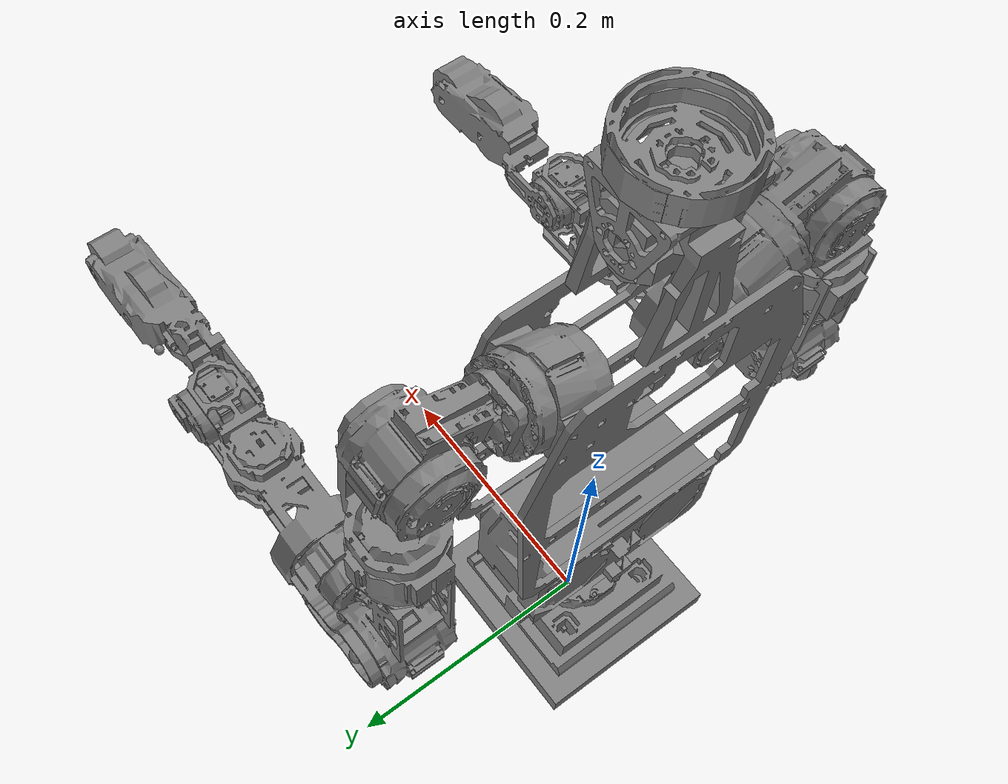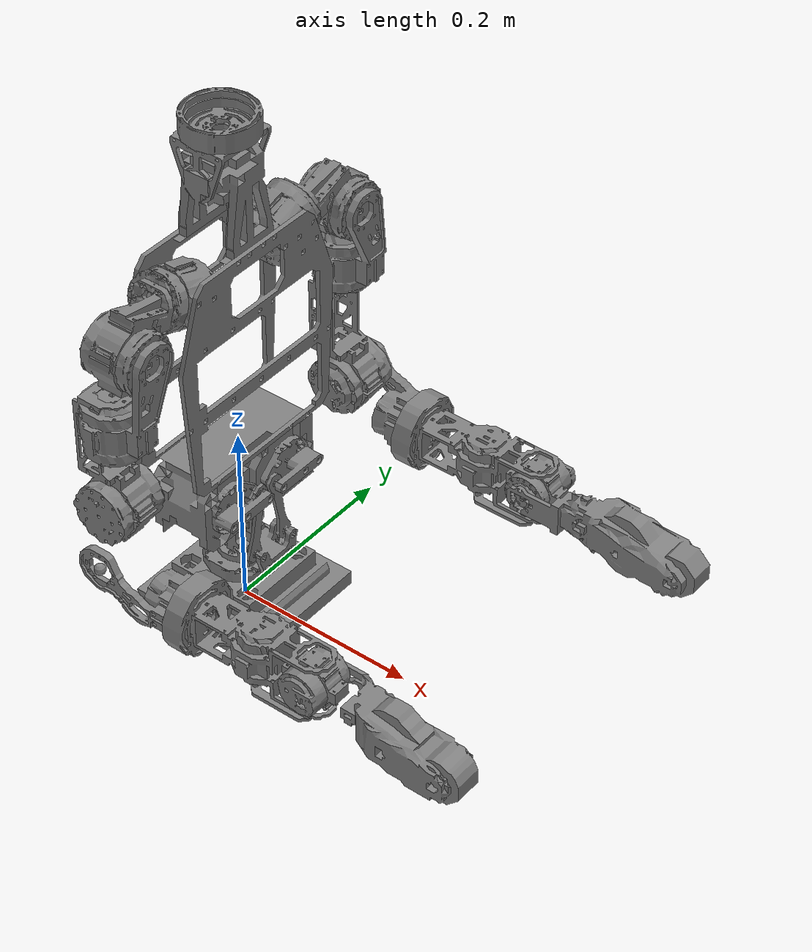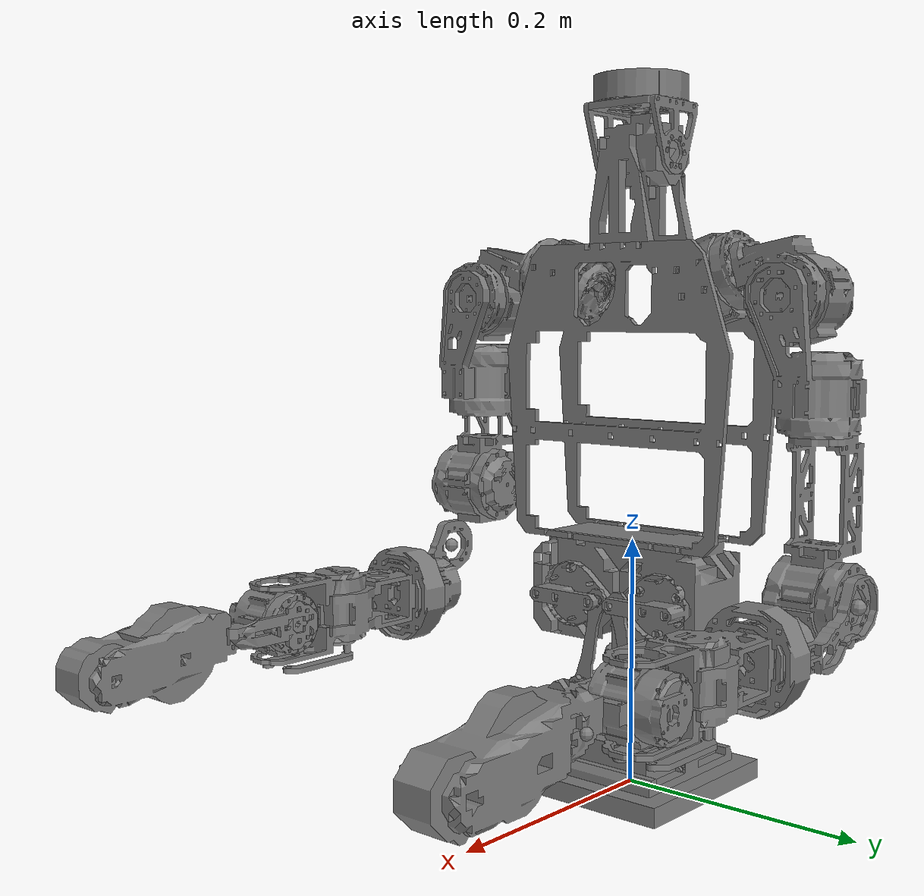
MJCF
<?xml version='1.0' encoding='utf-8'?>
<mujoco model="Semi_Taks_LV1">
  <compiler angle="radian" meshdir="meshes/" autolimits="true" />
  <option timestep="0.002" iterations="150" solver="Newton" tolerance="1e-10" integrator="implicit" gravity="0 0 -9.81" />
  <default>
    <joint limited="true" />
    <geom contype="0" conaffinity="0" condim="1" group="1" density="0" friction="1 0.005 0.0001" />
    <equality solref="0.01 2" solimp="0.95 0.999 0.001 0.5 2" />
    <default class="torso_motor">
      <joint armature="0.00985321" damping="0.01" frictionloss="0.1" />
    </default>
    <default class="shoulder_motor">
      <joint armature="0.0030254460886951994" damping="0.01" frictionloss="0.1" />
    </default>
    <default class="wrist_motor">
      <joint armature="0.00074568" damping="0.01" frictionloss="0.01" />
    </default>
  </default>
  <asset>
    <mesh name="base_link" file="base_link.STL" />
    <mesh name="head_pitch_link" file="head_pitch_link.STL" />
    <mesh name="head_yaw_link" file="head_yaw_link.STL" />
    <mesh name="left_elbow_link" file="left_elbow_link.STL" />
    <mesh name="left_shoulder_pitch_link" file="left_shoulder_pitch_link.STL" />
    <mesh name="left_shoulder_roll_link" file="left_shoulder_roll_link.STL" />
    <mesh name="left_shoulder_yaw_link" file="left_shoulder_yaw_link.STL" />
    <mesh name="left_wrist_pitch_link" file="left_wrist_pitch_link.STL" />
    <mesh name="left_wrist_roll_link" file="left_wrist_roll_link.STL" />
    <mesh name="left_wrist_yaw_inner_rod_link" file="left_wrist_yaw_inner_rod_link.STL" />
    <mesh name="left_wrist_yaw_link" file="left_wrist_yaw_link.STL" />
    <mesh name="left_wrist_yaw_motor_link" file="left_wrist_yaw_motor_link.STL" />
    <mesh name="left_wrist_yaw_outer_rod_link" file="left_wrist_yaw_outer_rod_link.STL" />
    <mesh name="right_elbow_link" file="right_elbow_link.STL" />
    <mesh name="right_shoulder_pitch_link" file="right_shoulder_pitch_link.STL" />
    <mesh name="right_shoulder_roll_link" file="right_shoulder_roll_link.STL" />
    <mesh name="right_shoulder_yaw_link" file="right_shoulder_yaw_link.STL" />
    <mesh name="right_wrist_pitch_link" file="right_wrist_pitch_link.STL" />
    <mesh name="right_wrist_roll_link" file="right_wrist_roll_link.STL" />
    <mesh name="right_wrist_yaw_inner_rod_link" file="right_wrist_yaw_inner_rod_link.STL" />
    <mesh name="right_wrist_yaw_link" file="right_wrist_yaw_link.STL" />
    <mesh name="right_wrist_yaw_motor_link" file="right_wrist_yaw_motor_link.STL" />
    <mesh name="right_wrist_yaw_outer_rod_link" file="right_wrist_yaw_outer_rod_link.STL" />
    <mesh name="waist_left_link_driven_link" file="waist_left_link_driven_link.STL" />
    <mesh name="waist_left_motor_link" file="waist_left_motor_link.STL" />
    <mesh name="waist_pitch_link" file="waist_pitch_link.STL" />
    <mesh name="waist_right_link_driven_link" file="waist_right_link_driven_link.STL" />
    <mesh name="waist_right_motor_link" file="waist_right_motor_link.STL" />
    <mesh name="waist_roll_link" file="waist_roll_link.STL" />
    <mesh name="waist_roll_link__1" file="waist_roll_link_torso.STL" />
    <mesh name="waist_roll_link__2" file="waist_roll_link_right_shoulder_mount.STL" />
    <mesh name="waist_roll_link__3" file="waist_roll_link_left_shoulder_mount.STL" />
    <mesh name="waist_yaw_link" file="waist_yaw_link.STL" />
  </asset>
  <worldbody>
    <body name="base_link" pos="0 0 0">
      <inertial pos="3.615728770349075e-05 7.216400983238834e-07 0.02364637205146159" mass="2.028270999256437" diaginertia="0.003204051641502538 0.003227353060055986 0.005300318516766879" quat="0.7068692033794958 4.046499056183199e-05 -4.868691538753837e-05 -0.7073442763646326" />
      <geom type="mesh" mesh="base_link" />
      <geom name="pelvis_collision" type="mesh" mesh="base_link" contype="1" conaffinity="2" group="0" />
      <body name="waist_yaw_link" pos="0 0 0.0698">
        <inertial pos="0.01281268363604007 -0.0003907537953881626 0.004250855354232155" mass="0.1050618216860173" diaginertia="3.095571186253258e-05 4.954073909258985e-05 6.149658776214933e-05" quat="0.9996517408796781 -0.01961518156104733 -0.01122019636484565 0.01362896922333161" />
        <joint name="waist_yaw_joint" class="torso_motor" type="hinge" axis="0 0 1" range="-2.618 2.618" />
        <geom type="mesh" mesh="waist_yaw_link" />
        <geom name="waist_yaw_link_collision" type="mesh" mesh="waist_yaw_link" contype="4" conaffinity="2" group="0" />
        <body name="waist_right_link_driven_link" pos="0.03415 -0.0221 0.0165">
          <inertial pos="-2.046451286379092e-05 0.004486910603955514 0.02633471668985116" mass="0.01206529948233483" diaginertia="2.178606790114814e-07 8.122558529980835e-06 8.299124610794417e-06" quat="0.05915010096364705 0.6971612372120238 0.06029516493414108 0.711921321474891" />
          <joint name="waist_right_link_driven_joint" class="torso_motor" type="ball" limited="false" />
          <geom type="mesh" mesh="waist_right_link_driven_link" />
          <geom name="waist_right_link_driven_link_collision" type="mesh" mesh="waist_right_link_driven_link" contype="4" conaffinity="2" group="0" />
        </body>
        <body name="waist_left_link_driven_link" pos="0.03415 0.022 0.0165">
          <inertial pos="-2.046451286382561e-05 -0.004422728633663574 0.02634122913594762" mass="0.01206529948233483" diaginertia="2.178626323711302e-07 8.114554495775924e-06 8.291111543885967e-06" quat="0.6971651987480443 0.05913301848727191 -0.7120005052887116 -0.05932328588171139" />
          <joint name="waist_left_link_driven_joint" class="torso_motor" type="ball" limited="false" />
          <geom type="mesh" mesh="waist_left_link_driven_link" />
          <geom name="waist_left_link_driven_link_collision" type="mesh" mesh="waist_left_link_driven_link" contype="4" conaffinity="2" group="0" />
        </body>
        <body name="waist_pitch_link" pos="0 0 0.0325">
          <inertial pos="-0.001216493794637136 -0.001972864937001692 9.557102054191802e-10" mass="0.1199857803003938" diaginertia="1.256442164950611e-05 1.320050231759515e-05 1.865835498783876e-05" quat="0.9530567473925502 -2.48303145691735e-08 6.843660163040924e-10 -0.3027917374195213" />
          <joint name="waist_pitch_joint" class="torso_motor" type="hinge" axis="0 1 0" range="-0.7854 0.7854" />
          <geom type="mesh" mesh="waist_pitch_link" />
          <geom name="waist_pitch_link_collision" type="mesh" mesh="waist_pitch_link" contype="4" conaffinity="2" group="0" />
          <body name="waist_roll_link" pos="0 0 0">
            <inertial pos="-0.00645702325339295 0.0003563208085501268 0.1710347886529" mass="3.682445828212606" diaginertia="0.01219495494384115 0.06777649739844556 0.07740643203319564" quat="0.002478176564850511 -0.7031278490387128 0.0009393517988919434 0.7110585096638001" />
            <joint name="waist_roll_joint" class="torso_motor" type="hinge" axis="1 0 0" range="-0.7854 0.7854" />
            <geom type="mesh" mesh="waist_roll_link" />
            <geom name="waist_roll_collision" type="mesh" mesh="waist_roll_link" contype="4" conaffinity="2" group="0" />
            <geom type="mesh" mesh="waist_roll_link__1" />
            <geom name="waist_roll_collision_1" type="mesh" mesh="waist_roll_link__1" contype="4" conaffinity="2" group="0" />
            <geom type="mesh" mesh="waist_roll_link__2" />
            <geom name="waist_roll_collision_2" type="mesh" mesh="waist_roll_link__2" contype="4" conaffinity="2" group="0" />
            <geom type="mesh" mesh="waist_roll_link__3" />
            <geom name="waist_roll_collision_3" type="mesh" mesh="waist_roll_link__3" contype="4" conaffinity="2" group="0" />
            <body name="waist_right_motor_link" pos="0.02515 -0.0425 0.052">
              <inertial pos="0.00512474199667981 0.002540215489751203 3.300492699448432e-06" mass="0.06153448822481092" diaginertia="9.521940550410915e-06 2.057463698968498e-05 2.29062364022043e-05" quat="-0.4933130298842702 -0.4934639568120728 0.5063298236070005 0.5067205221814859" />
              <joint name="waist_right_motor_joint" class="torso_motor" type="hinge" axis="1 0 0" range="-0.75000000 1.16190000" />
              <geom type="mesh" mesh="waist_right_motor_link" />
              <geom name="waist_right_motor_link_collision" type="mesh" mesh="waist_right_motor_link" contype="4" conaffinity="2" group="0" />
            </body>
            <body name="waist_left_motor_link" pos="0.02515 0.0425 0.052">
              <inertial pos="0.005124741996679807 -0.002540195468385874 4.826298451443556e-07" mass="0.06153448822481092" diaginertia="9.52194055041091e-06 2.057463698968497e-05 2.290623640220428e-05" quat="0.5067066483256096 0.5063437077879026 -0.4936799962421397 -0.4930968296760658" />
              <joint name="waist_left_motor_joint" class="torso_motor" type="hinge" axis="1 0 0" range="-1.16190000 0.75000000" />
              <geom type="mesh" mesh="waist_left_motor_link" />
              <geom name="waist_left_motor_link_collision" type="mesh" mesh="waist_left_motor_link" contype="4" conaffinity="2" group="0" />
            </body>
            <body name="right_shoulder_pitch_link" pos="-0.0048 -0.0982676 0.3138799">
              <inertial pos="0.008627242380119082 -0.04554011669645418 -0.01948230639697313" mass="0.5718550961793376" diaginertia="0.0002681853371500161 0.000342284081024636 0.0003556854311120827" quat="0.6814596043176138 0.2811063172487353 0.1778421485532094 -0.6518927950852907" />
              <joint name="right_shoulder_pitch_joint" class="shoulder_motor" type="hinge" axis="0 0.94832 -0.3173" range="-3.1415 1.0472" />
              <geom type="mesh" mesh="right_shoulder_pitch_link" />
              <geom name="right_shoulder_pitch_collision" type="mesh" mesh="right_shoulder_pitch_link" contype="8" conaffinity="50" group="0" />
              <body name="right_shoulder_roll_link" pos="0.042 -0.0486762 -0.0218439">
                <inertial pos="-0.03527124077571181 -0.01433606170913515 -0.06783771534456989" mass="0.5652982993172326" diaginertia="0.0002671118977782618 0.0004114139298430614 0.0004332060349254751" quat="0.5811645359854105 -0.6504956797987782 -0.3839277970082535 -0.3028243704862232" />
                <joint name="right_shoulder_roll_joint" class="shoulder_motor" type="hinge" axis="1 0 0" range="-2.2515 1.5882" />
                <geom type="mesh" mesh="right_shoulder_roll_link" />
                <geom name="right_shoulder_roll_collision" type="mesh" mesh="right_shoulder_roll_link" contype="8" conaffinity="50" group="0" />
                <body name="right_shoulder_yaw_link" pos="-0.0383 -0.0149556 -0.105461">
                  <inertial pos="0.001870147561554066 -0.001602688945309599 -0.1073988234731688" mass="0.5784603077913861" diaginertia="0.0002750816250211276 0.0006547522737576027 0.00067969163220874" quat="0.0009341050410041482 0.6665269596326134 0.01281253867683364 0.7453702290696427" />
                  <joint name="right_shoulder_yaw_joint" class="shoulder_motor" type="hinge" axis="0 0 1" range="-2.618 2.618" />
                  <geom type="mesh" mesh="right_shoulder_yaw_link" />
                  <geom name="right_shoulder_yaw_collision" type="mesh" mesh="right_shoulder_yaw_link" contype="8" conaffinity="50" group="0" />
                  <body name="right_elbow_link" pos="0.003 -0.0356006 -0.1154997">
                    <inertial pos="0.066258056091528 0.02745141606021101 -0.02356964510219484" mass="0.3259631470204687" diaginertia="0.0001187358505978685 0.0002396428883085435 0.0002409381613061552" quat="-0.4421504597003699 0.8626206120837967 0.1077944084701 -0.220837080440556" />
                    <joint name="right_elbow_joint" class="shoulder_motor" type="hinge" axis="0 1 0" range="-1.0472 1.5708" />
                    <site name="right_elbow" pos="0 0 0" size="0.006" />
                    <geom type="mesh" mesh="right_elbow_link" />
                    <geom name="right_elbow_collision" type="mesh" mesh="right_elbow_link" contype="8" conaffinity="50" group="0" />
                    <body name="right_wrist_roll_link" pos="0.0972 0.0305006 -0.025">
                      <inertial pos="0.05705037001415487 -1.525117041850654e-05 0.001164116465176807" mass="0.4165237436850193" diaginertia="0.0001976029040822419 0.000586776196157853 0.000610696784928939" quat="0.7061920418955651 -0.7079612149357346 -0.006445037114022161 -0.006494582872671465" />
                      <joint name="right_wrist_roll_joint" class="wrist_motor" type="hinge" axis="1 0 0" range="-2.67 2.67" />
                      <geom type="mesh" mesh="right_wrist_roll_link" />
                      <geom name="right_wrist_roll_collision" type="mesh" mesh="right_wrist_roll_link" contype="8" conaffinity="50" group="0" />
                      <body name="right_wrist_yaw_motor_link" pos="0.071 -6e-07 0.0012997">
                        <inertial pos="4.248552079588741e-08 5.782824379352292e-07 -0.03023266637914193" mass="0.006100131928918171" diaginertia="4.307240457697077e-07 7.812635823758112e-07 9.324876713040021e-07" quat="2.348167259790096e-14 0.7071067811865527 -0.7071067811865422 -2.061327710926345e-14" />
                        <joint name="right_wrist_yaw_motor_joint" class="wrist_motor" type="hinge" axis="0 0 1" range="-1.309 1.309" />
                        <geom type="mesh" mesh="right_wrist_yaw_motor_link" />
                        <geom name="right_wrist_yaw_motor_link_collision" type="mesh" mesh="right_wrist_yaw_motor_link" contype="8" conaffinity="50" group="0" />
                        <body name="right_wrist_yaw_outer_rod_link" pos="0 -0.012 -0.038">
                          <inertial pos="0.03025004248552082 -0.004500304485084039 -7.840760069592612e-05" mass="0.005904557513617986" diaginertia="6.094309902101699e-08 2.024811490731524e-06 2.071379005421215e-06" quat="-0.006076178549143149 0.999981539856731 2.388071643436521e-17 3.752214522435212e-15" />
                          <joint name="right_wrist_yaw_outer_rod_joint" class="wrist_motor" type="hinge" axis="0 0 1" limited="false" />
                          <geom type="mesh" mesh="right_wrist_yaw_outer_rod_link" />
                          <geom name="right_wrist_yaw_outer_rod_link_collision" type="mesh" mesh="right_wrist_yaw_outer_rod_link" contype="8" conaffinity="50" group="0" />
                        </body>
                        <body name="right_wrist_yaw_inner_rod_link" pos="0 0.012 -0.038">
                          <inertial pos="0.03025004248552079 0.004501461049959687 -7.840760069592612e-05" mass="0.005904557513617986" diaginertia="6.094309902101206e-08 2.024811490731517e-06 2.071379005421214e-06" quat="0.006076178549155973 0.9999815398567309 -1.990059702867999e-17 3.126845435362678e-15" />
                          <joint name="right_wrist_yaw_inner_rod_joint" class="wrist_motor" type="hinge" axis="0 0 1" limited="false" />
                          <geom type="mesh" mesh="right_wrist_yaw_inner_rod_link" />
                          <geom name="right_wrist_yaw_inner_rod_link_collision" type="mesh" mesh="right_wrist_yaw_inner_rod_link" contype="8" conaffinity="50" group="0" />
                        </body>
                      </body>
                      <body name="right_wrist_yaw_link" pos="0.1315 -6e-07 0">
                        <inertial pos="1.913099100400717e-05 -0.001874924530002625 -0.0004601259376847133" mass="0.2866268206061773" diaginertia="9.282166905363384e-05 0.0001025571259470668 0.0001162754569441835" quat="0.7055181860551027 0.06183521931654205 -0.7052590928520738 0.03209527608640622" />
                        <joint name="right_wrist_yaw_joint" class="wrist_motor" type="hinge" axis="0 0 1" range="-1.309 1.309" />
                        <geom type="mesh" mesh="right_wrist_yaw_link" />
                        <geom name="right_wrist_yaw_collision" type="mesh" mesh="right_wrist_yaw_link" contype="8" conaffinity="50" group="0" />
                        <body name="right_wrist_pitch_link" pos="0 0 0">
                          <inertial pos="0.110280240139547 -0.005780811911683337 -0.008176198903253551" mass="0.8069563299619351" diaginertia="0.0002632671208463512 0.001066746013385937 0.00109078585546579" quat="0.6659439336630238 0.7419158152385323 0.01356373764287713 -0.07678297557087232" />
                          <joint name="right_wrist_pitch_joint" class="wrist_motor" type="hinge" axis="0 1 0" range="-1.5708 1.5708" />
                          <site name="right_tcp" pos="0.06851 -0.01358 -0.0005753" size="0.004" />
                          <camera name="right_wrist_camera" pos="0.1034313514828682 0.023001 0.03892825171351433" xyaxes="0 -1 0 0.342020143326 0 0.939692620786" fovy="120" resolution="128 128" />
                          <geom type="mesh" mesh="right_wrist_pitch_link" />
                          <geom name="right_hand_collision" type="mesh" mesh="right_wrist_pitch_link" contype="8" conaffinity="50" group="0" />
                        </body>
                      </body>
                    </body>
                  </body>
                </body>
              </body>
            </body>
            <body name="left_shoulder_pitch_link" pos="-0.0048 0.0982676 0.3138799">
              <inertial pos="0.008627242951437335 0.04554011623784689 -0.01948230654701311" mass="0.5718550961793376" diaginertia="0.0002681853338798835 0.0003422840814788215 0.0003556854304377007" quat="0.281106474974584 0.6814595600938803 0.6518928090487174 -0.177842017517208" />
              <joint name="left_shoulder_pitch_joint" class="shoulder_motor" type="hinge" axis="0 0.94832 0.3173" range="-3.1415 1.0472" />
              <geom type="mesh" mesh="left_shoulder_pitch_link" />
              <geom name="left_shoulder_pitch_collision" type="mesh" mesh="left_shoulder_pitch_link" contype="16" conaffinity="42" group="0" />
              <body name="left_shoulder_roll_link" pos="0.042 0.0486762 -0.0218439">
                <inertial pos="-0.03527124077244259 0.01433606122102196 -0.0678377159225147" mass="0.5652982993172326" diaginertia="0.0002671118964974355 0.000411413929435532 0.0004332060388828111" quat="0.6504957353931937 -0.5811644774518329 -0.3028243932278096 -0.383927773480397" />
                <joint name="left_shoulder_roll_joint" class="shoulder_motor" type="hinge" axis="1 0 0" range="-1.5882 2.2515" />
                <geom type="mesh" mesh="left_shoulder_roll_link" />
                <geom name="left_shoulder_roll_collision" type="mesh" mesh="left_shoulder_roll_link" contype="16" conaffinity="42" group="0" />
                <body name="left_shoulder_yaw_link" pos="-0.0383 0.0149556 -0.105461">
                  <inertial pos="0.001870148038560967 0.001602689510104199 -0.1073988234699739" mass="0.5784603077913861" diaginertia="0.0002750816211832454 0.000654752276910556 0.0006796916329712716" quat="0.6665269579813055 0.0009341862902807567 -0.7453702319414772 -0.01281245158704886" />
                  <joint name="left_shoulder_yaw_joint" class="shoulder_motor" type="hinge" axis="0 0 1" range="-2.618 2.618" />
                  <geom type="mesh" mesh="left_shoulder_yaw_link" />
                  <geom name="left_shoulder_yaw_collision" type="mesh" mesh="left_shoulder_yaw_link" contype="16" conaffinity="42" group="0" />
                  <body name="left_elbow_link" pos="0.003 0.0356006 -0.1154997">
                    <inertial pos="0.06625810548598987 -0.02745142122694993 -0.02356964550468152" mass="0.3259631470204687" diaginertia="0.000118735856971361 0.0002396429217714917 0.0002409382085433682" quat="0.862623117221416 -0.442145508642978 0.2208365573043404 -0.1077957410105619" />
                    <joint name="left_elbow_joint" class="shoulder_motor" type="hinge" axis="0 1 0" range="-1.0472 1.5708" />
                    <site name="left_elbow" pos="0 0 0" size="0.006" />
                    <geom type="mesh" mesh="left_elbow_link" />
                    <geom name="left_elbow_collision" type="mesh" mesh="left_elbow_link" contype="16" conaffinity="42" group="0" />
                    <body name="left_wrist_roll_link" pos="0.0972 -0.0305006 -0.025">
                      <inertial pos="0.05705037405754139 1.52508554404629e-05 0.001164077810059366" mass="0.4165237436850193" diaginertia="0.0001976028182779897 0.0005867762652433783 0.0006106967631877544" quat="0.7061920245135007 0.7079612355642966 -0.006444860387523746 0.006494399616794953" />
                      <joint name="left_wrist_roll_joint" class="wrist_motor" type="hinge" axis="1 0 0" range="-2.67 2.67" />
                      <geom type="mesh" mesh="left_wrist_roll_link" />
                      <geom name="left_wrist_roll_collision" type="mesh" mesh="left_wrist_roll_link" contype="16" conaffinity="42" group="0" />
                      <body name="left_wrist_yaw_motor_link" pos="0.071 6e-07 0.0012997">
                        <inertial pos="4.248552079588741e-08 -5.782824379352292e-07 -0.03023266637914193" mass="0.006100131928918171" diaginertia="4.307240457697161e-07 7.812635823758115e-07 9.324876713040101e-07" quat="0.707106781186552 2.021504973111732e-14 1.675076770482413e-14 0.707106781186543" />
                        <joint name="left_wrist_yaw_motor_joint" class="wrist_motor" type="hinge" axis="0 0 1" range="-1.309 1.309" />
                        <geom type="mesh" mesh="left_wrist_yaw_motor_link" />
                        <geom name="left_wrist_yaw_motor_link_collision" type="mesh" mesh="left_wrist_yaw_motor_link" contype="16" conaffinity="42" group="0" />
                        <body name="left_wrist_yaw_outer_rod_link" pos="0 0.012 -0.038">
                          <inertial pos="0.03025004248552082 0.004500304485084011 -7.840760069592612e-05" mass="0.005904557513617986" diaginertia="6.094309902102453e-08 2.02481149073153e-06 2.071379005421222e-06" quat="0.006076178549215951 0.9999815398567306 -8.26115411301719e-16 4.060261790705388e-15" />
                          <joint name="left_wrist_yaw_outer_rod_joint" class="wrist_motor" type="hinge" axis="0 0 1" limited="false" />
                          <geom type="mesh" mesh="left_wrist_yaw_outer_rod_link" />
                          <geom name="left_wrist_yaw_outer_rod_link_collision" type="mesh" mesh="left_wrist_yaw_outer_rod_link" contype="16" conaffinity="42" group="0" />
                        </body>
                        <body name="left_wrist_yaw_inner_rod_link" pos="0 -0.012 -0.038">
                          <inertial pos="0.03025004248552079 -0.004501461049959687 -7.840760069592612e-05" mass="0.005904557513617986" diaginertia="6.094309902100955e-08 2.024811490731514e-06 2.071379005421217e-06" quat="0.999981539856731 0.00607617854914966 -2.18786434970066e-15 1.739793449528978e-16" />
                          <joint name="left_wrist_yaw_inner_rod_joint" class="wrist_motor" type="hinge" axis="0 0 1" limited="false" />
                          <geom type="mesh" mesh="left_wrist_yaw_inner_rod_link" />
                          <geom name="left_wrist_yaw_inner_rod_link_collision" type="mesh" mesh="left_wrist_yaw_inner_rod_link" contype="16" conaffinity="42" group="0" />
                        </body>
                      </body>
                      <body name="left_wrist_yaw_link" pos="0.1315 6e-07 0">
                        <inertial pos="1.913144872744965e-05 0.001874868356703141 -0.000460131813500797" mass="0.2866268206061773" diaginertia="9.282160212009011e-05 0.0001025571487974503 0.0001162754112930916" quat="0.7055181477266598 -0.0618340738773087 -0.7052591531993126 -0.03209699930939105" />
                        <joint name="left_wrist_yaw_joint" class="wrist_motor" type="hinge" axis="0 0 1" range="-1.309 1.309" />
                        <geom type="mesh" mesh="left_wrist_yaw_link" />
                        <geom name="left_wrist_yaw_collision" type="mesh" mesh="left_wrist_yaw_link" contype="16" conaffinity="42" group="0" />
                        <body name="left_wrist_pitch_link" pos="0 0 0">
                          <inertial pos="0.1102802419448741 0.005780810699278105 -0.008176197809074082" mass="0.8069563299619351" diaginertia="0.0002632671201469682 0.001066745740801592 0.001090785564275639" quat="0.6659442114013422 -0.7419155598897749 0.01356378919349496 0.07678302492869533" />
                          <joint name="left_wrist_pitch_joint" class="wrist_motor" type="hinge" axis="0 1 0" range="-1.5708 1.5708" />
                          <site name="left_tcp" pos="0.06851 0.01358 -0.0005753" size="0.004" />
                          <camera name="left_wrist_camera" pos="0.1034313514828682 -0.023001 0.03892825171351433" xyaxes="0 -1 0 0.342020143326 0 0.939692620786" fovy="120" resolution="128 128" />
                          <geom type="mesh" mesh="left_wrist_pitch_link" />
                          <geom name="left_hand_collision" type="mesh" mesh="left_wrist_pitch_link" contype="16" conaffinity="42" group="0" />
                        </body>
                      </body>
                    </body>
                  </body>
                </body>
              </body>
            </body>
            <body name="head_pitch_link" pos="-0.0048 0 0.404">
              <inertial pos="4.325313270273166e-05 0.0002473514784242243 0.06184530942701361" mass="0.356579089258259" diaginertia="0.000165845407379026 0.000229724554518487 0.0002455319414505697" quat="-0.01582966003091277 0.7084430148374586 0.03007339860466978 -0.7049492941252461" />
              <joint name="head_pitch_joint" class="wrist_motor" type="hinge" axis="0 1 0" range="-1.57 1.57" />
              <geom type="mesh" mesh="head_pitch_link" />
              <geom name="head_pitch_link_collision" type="mesh" mesh="head_pitch_link" contype="32" conaffinity="26" group="0" />
              <body name="head_yaw_link" pos="0 0 0.0542">
                <inertial pos="9.382317520178953e-05 1.201383276866819e-05 -0.007030753368384768" mass="0.06080201055640206" diaginertia="3.138216795839313e-05 3.146645894428864e-05 5.838469782282801e-05" quat="0.9918942570335774 0.000129139722890528 -0.0001897591066559806 0.1270658497717665" />
                <joint name="head_yaw_joint" class="wrist_motor" type="hinge" axis="0 0 1" range="-2.618 2.618" />
                <camera name="head_left_camera" pos="0.08822307593 0.02979965544 0.04541159739" xyaxes="0 -1 0 0.1719291 0 0.985109326" fovy="125" resolution="1920 1080" />
                <camera name="head_right_camera" pos="0.08822307593 -0.03020034456 0.04541159739" xyaxes="0 -1 0 0.1719291 0 0.985109326" fovy="125" resolution="1920 1080" />
                <geom type="mesh" mesh="head_yaw_link" />
                <geom name="head_collision" type="mesh" mesh="head_yaw_link" contype="32" conaffinity="26" group="0" />
              </body>
            </body>
          </body>
        </body>
      </body>
    </body>
  </worldbody>
  <equality>
    <connect name="waist_right_parallel_loop" body1="waist_right_motor_link" body2="waist_right_link_driven_link" anchor="0.009 0.032 0" />
    <connect name="waist_left_parallel_loop" body1="waist_left_motor_link" body2="waist_left_link_driven_link" anchor="0.009 -0.032 5e-05" />
    <connect name="right_wrist_yaw_outer_loop" body1="right_wrist_yaw_outer_rod_link" body2="right_wrist_yaw_link" anchor="0.0605 0 0" solref="0.002 1" solimp="0.95 0.99 0.001 0.5 2" />
    <connect name="right_wrist_yaw_inner_loop" body1="right_wrist_yaw_inner_rod_link" body2="right_wrist_yaw_link" anchor="0.0605 0 0" solref="0.002 1" solimp="0.95 0.99 0.001 0.5 2" />
    <connect name="left_wrist_yaw_outer_loop" body1="left_wrist_yaw_outer_rod_link" body2="left_wrist_yaw_link" anchor="0.0605 0 0" solref="0.002 1" solimp="0.95 0.99 0.001 0.5 2" />
    <connect name="left_wrist_yaw_inner_loop" body1="left_wrist_yaw_inner_rod_link" body2="left_wrist_yaw_link" anchor="0.0605 0 0" solref="0.002 1" solimp="0.95 0.99 0.001 0.5 2" />
  </equality>
  <actuator>
    <position name="waist_yaw_joint" joint="waist_yaw_joint" ctrlrange="-2.618 2.618" kp="38.89891391234306" kv="2.4763817720221986" forcerange="-60 60" />
    <position name="waist_right_motor_joint" joint="waist_right_motor_joint" ctrlrange="-0.75000000 1.16190000" kp="77.79782782468612" kv="4.952763544044397" forcerange="-60 60" />
    <position name="waist_left_motor_joint" joint="waist_left_motor_joint" ctrlrange="-1.16190000 0.75000000" kp="77.79782782468612" kv="4.952763544044397" forcerange="-60 60" />
    <position name="right_shoulder_pitch_joint" joint="right_shoulder_pitch_joint" ctrlrange="-3.1415 1.0472" kp="11.943982412897888" kv="0.7603775364861449" forcerange="-30 30" />
    <position name="right_shoulder_roll_joint" joint="right_shoulder_roll_joint" ctrlrange="-2.2515 1.5882" kp="11.943982412897888" kv="0.7603775364861449" forcerange="-30 30" />
    <position name="right_shoulder_yaw_joint" joint="right_shoulder_yaw_joint" ctrlrange="-2.618 2.618" kp="11.943982412897888" kv="0.7603775364861449" forcerange="-30 30" />
    <position name="right_elbow_joint" joint="right_elbow_joint" ctrlrange="-0.78 1.5708" kp="11.943982412897888" kv="0.7603775364861449" forcerange="-30 30" />
    <position name="right_wrist_roll_joint" joint="right_wrist_roll_joint" ctrlrange="-2.67 2.67" kp="2.943826643921725" kv="0.18740982479430696" forcerange="-6 6" />
    <position name="right_wrist_yaw_motor_joint" joint="right_wrist_yaw_motor_joint" ctrlrange="-1.309 1.309" kp="2.943826643921725" kv="0.18740982479430696" forcerange="-6 6" />
    <position name="right_wrist_pitch_joint" joint="right_wrist_pitch_joint" ctrlrange="-1.5708 1.5708" kp="2.943826643921725" kv="0.18740982479430696" forcerange="-6 6" />
    <position name="left_shoulder_pitch_joint" joint="left_shoulder_pitch_joint" ctrlrange="-3.1415 1.0472" kp="11.943982412897888" kv="0.7603775364861449" forcerange="-30 30" />
    <position name="left_shoulder_roll_joint" joint="left_shoulder_roll_joint" ctrlrange="-1.5882 2.2515" kp="11.943982412897888" kv="0.7603775364861449" forcerange="-30 30" />
    <position name="left_shoulder_yaw_joint" joint="left_shoulder_yaw_joint" ctrlrange="-2.618 2.618" kp="11.943982412897888" kv="0.7603775364861449" forcerange="-30 30" />
    <position name="left_elbow_joint" joint="left_elbow_joint" ctrlrange="-0.78 1.5708" kp="11.943982412897888" kv="0.7603775364861449" forcerange="-30 30" />
    <position name="left_wrist_roll_joint" joint="left_wrist_roll_joint" ctrlrange="-2.67 2.67" kp="2.943826643921725" kv="0.18740982479430696" forcerange="-6 6" />
    <position name="left_wrist_yaw_motor_joint" joint="left_wrist_yaw_motor_joint" ctrlrange="-1.309 1.309" kp="2.943826643921725" kv="0.18740982479430696" forcerange="-6 6" />
    <position name="left_wrist_pitch_joint" joint="left_wrist_pitch_joint" ctrlrange="-1.5708 1.5708" kp="2.943826643921725" kv="0.18740982479430696" forcerange="-6 6" />
    <position name="head_pitch_joint" joint="head_pitch_joint" ctrlrange="-1.57 1.57" kp="2.943826643921725" kv="0.18740982479430696" forcerange="-6 6" />
    <position name="head_yaw_joint" joint="head_yaw_joint" ctrlrange="-2.618 2.618" kp="2.943826643921725" kv="0.18740982479430696" forcerange="-6 6" />
  </actuator>
</mujoco>
